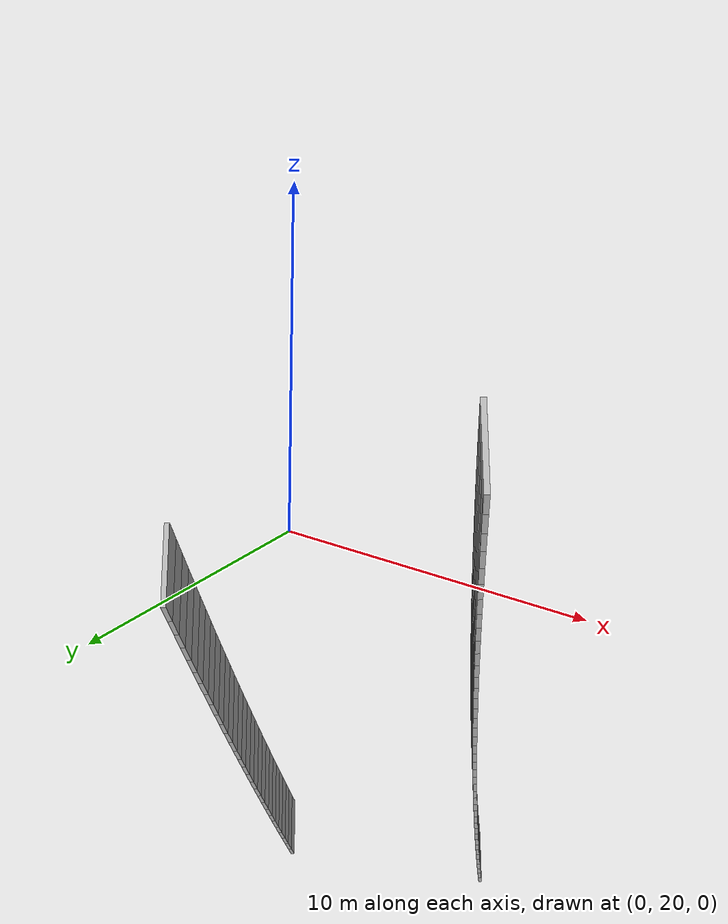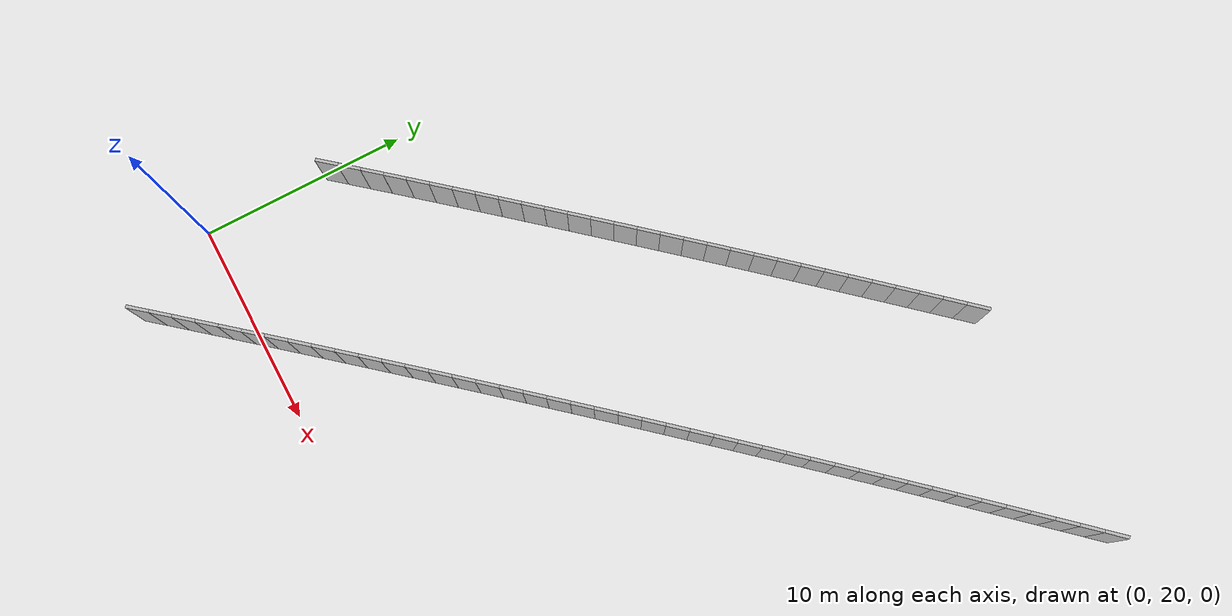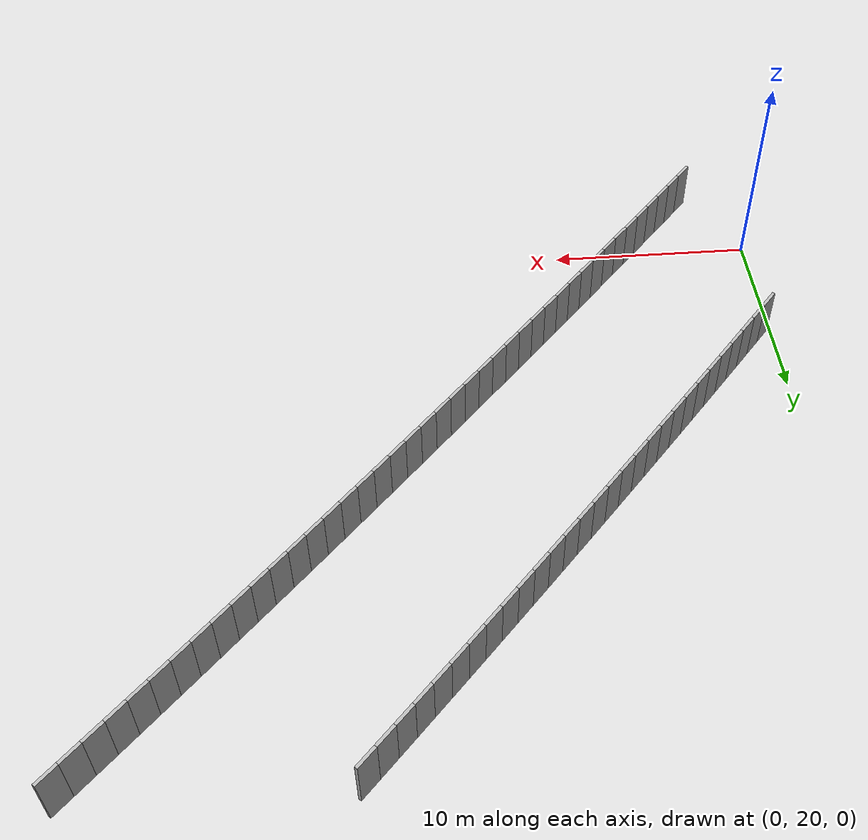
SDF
<?xml version="1.0" ?>
<sdf version="1.6">
  <model name="sps_0940">
    <pose frame="">0 0 0 0 -0 0</pose>
    <static>1</static>
    <self_collide>0</self_collide>
    <allow_auto_disable>0</allow_auto_disable>
    <link name="Wall3544">
      <kinematic>0</kinematic>
      <gravity>1</gravity>
      <self_collide>0</self_collide>
      <collision name="collision">
        <geometry>
          <box>
            <size>1.08576 0.15 2.5</size>
          </box>
        </geometry>
        <pose frame="">0 0 0 0 -0 0</pose>
      </collision>
      <visual name="visual">
        <geometry>
          <box>
            <size>1.08576 0.15 2.5</size>
          </box>
        </geometry>
        <pose frame="">0 0 0 0 -0 0</pose>
        <cast_shadows>1</cast_shadows>
        <transparency>0.0</transparency>
      </visual>
      <pose frame="">20.774 49.2208 1.25 0 0 -2.31568</pose>
    </link>
    <link name="Wall3545">
      <kinematic>0</kinematic>
      <gravity>1</gravity>
      <self_collide>0</self_collide>
      <collision name="collision">
        <geometry>
          <box>
            <size>1.08559 0.15 2.5</size>
          </box>
        </geometry>
        <pose frame="">0 0 0 0 -0 0</pose>
      </collision>
      <visual name="visual">
        <geometry>
          <box>
            <size>1.08559 0.15 2.5</size>
          </box>
        </geometry>
        <pose frame="">0 0 0 0 -0 0</pose>
        <cast_shadows>1</cast_shadows>
        <transparency>0.0</transparency>
      </visual>
      <pose frame="">20.0384 48.4223 1.25 0 0 -2.31476</pose>
    </link>
    <link name="Wall3546">
      <kinematic>0</kinematic>
      <gravity>1</gravity>
      <self_collide>0</self_collide>
      <collision name="collision">
        <geometry>
          <box>
            <size>1.08569 0.15 2.5</size>
          </box>
        </geometry>
        <pose frame="">0 0 0 0 -0 0</pose>
      </collision>
      <visual name="visual">
        <geometry>
          <box>
            <size>1.08569 0.15 2.5</size>
          </box>
        </geometry>
        <pose frame="">0 0 0 0 -0 0</pose>
        <cast_shadows>1</cast_shadows>
        <transparency>0.0</transparency>
      </visual>
      <pose frame="">19.3038 47.623 1.25 0 0 -2.31345</pose>
    </link>
    <link name="Wall3547">
      <kinematic>0</kinematic>
      <gravity>1</gravity>
      <self_collide>0</self_collide>
      <collision name="collision">
        <geometry>
          <box>
            <size>1.08587 0.15 2.5</size>
          </box>
        </geometry>
        <pose frame="">0 0 0 0 -0 0</pose>
      </collision>
      <visual name="visual">
        <geometry>
          <box>
            <size>1.08587 0.15 2.5</size>
          </box>
        </geometry>
        <pose frame="">0 0 0 0 -0 0</pose>
        <cast_shadows>1</cast_shadows>
        <transparency>0.0</transparency>
      </visual>
      <pose frame="">18.57 46.8227 1.25 0 0 -2.3123</pose>
    </link>
    <link name="Wall3548">
      <kinematic>0</kinematic>
      <gravity>1</gravity>
      <self_collide>0</self_collide>
      <collision name="collision">
        <geometry>
          <box>
            <size>1.08571 0.15 2.5</size>
          </box>
        </geometry>
        <pose frame="">0 0 0 0 -0 0</pose>
      </collision>
      <visual name="visual">
        <geometry>
          <box>
            <size>1.08571 0.15 2.5</size>
          </box>
        </geometry>
        <pose frame="">0 0 0 0 -0 0</pose>
        <cast_shadows>1</cast_shadows>
        <transparency>0.0</transparency>
      </visual>
      <pose frame="">17.8371 46.0216 1.25 0 0 -2.31122</pose>
    </link>
    <link name="Wall3549">
      <kinematic>0</kinematic>
      <gravity>1</gravity>
      <self_collide>0</self_collide>
      <collision name="collision">
        <geometry>
          <box>
            <size>1.08581 0.15 2.5</size>
          </box>
        </geometry>
        <pose frame="">0 0 0 0 -0 0</pose>
      </collision>
      <visual name="visual">
        <geometry>
          <box>
            <size>1.08581 0.15 2.5</size>
          </box>
        </geometry>
        <pose frame="">0 0 0 0 -0 0</pose>
        <cast_shadows>1</cast_shadows>
        <transparency>0.0</transparency>
      </visual>
      <pose frame="">17.1051 45.2197 1.25 0 0 -2.31007</pose>
    </link>
    <link name="Wall3550">
      <kinematic>0</kinematic>
      <gravity>1</gravity>
      <self_collide>0</self_collide>
      <collision name="collision">
        <geometry>
          <box>
            <size>1.08583 0.15 2.5</size>
          </box>
        </geometry>
        <pose frame="">0 0 0 0 -0 0</pose>
      </collision>
      <visual name="visual">
        <geometry>
          <box>
            <size>1.08583 0.15 2.5</size>
          </box>
        </geometry>
        <pose frame="">0 0 0 0 -0 0</pose>
        <cast_shadows>1</cast_shadows>
        <transparency>0.0</transparency>
      </visual>
      <pose frame="">16.374 44.4169 1.25 0 0 -2.30892</pose>
    </link>
    <link name="Wall3551">
      <kinematic>0</kinematic>
      <gravity>1</gravity>
      <self_collide>0</self_collide>
      <collision name="collision">
        <geometry>
          <box>
            <size>1.08563 0.15 2.5</size>
          </box>
        </geometry>
        <pose frame="">0 0 0 0 -0 0</pose>
      </collision>
      <visual name="visual">
        <geometry>
          <box>
            <size>1.08563 0.15 2.5</size>
          </box>
        </geometry>
        <pose frame="">0 0 0 0 -0 0</pose>
        <cast_shadows>1</cast_shadows>
        <transparency>0.0</transparency>
      </visual>
      <pose frame="">15.6439 43.6133 1.25 0 0 -2.30772</pose>
    </link>
    <link name="Wall3552">
      <kinematic>0</kinematic>
      <gravity>1</gravity>
      <self_collide>0</self_collide>
      <collision name="collision">
        <geometry>
          <box>
            <size>1.08565 0.15 2.5</size>
          </box>
        </geometry>
        <pose frame="">0 0 0 0 -0 0</pose>
      </collision>
      <visual name="visual">
        <geometry>
          <box>
            <size>1.08565 0.15 2.5</size>
          </box>
        </geometry>
        <pose frame="">0 0 0 0 -0 0</pose>
        <cast_shadows>1</cast_shadows>
        <transparency>0.0</transparency>
      </visual>
      <pose frame="">14.9148 42.8089 1.25 0 0 -2.30656</pose>
    </link>
    <link name="Wall3553">
      <kinematic>0</kinematic>
      <gravity>1</gravity>
      <self_collide>0</self_collide>
      <collision name="collision">
        <geometry>
          <box>
            <size>1.08566 0.15 2.5</size>
          </box>
        </geometry>
        <pose frame="">0 0 0 0 -0 0</pose>
      </collision>
      <visual name="visual">
        <geometry>
          <box>
            <size>1.08566 0.15 2.5</size>
          </box>
        </geometry>
        <pose frame="">0 0 0 0 -0 0</pose>
        <cast_shadows>1</cast_shadows>
        <transparency>0.0</transparency>
      </visual>
      <pose frame="">14.1865 42.0037 1.25 0 0 -2.30549</pose>
    </link>
    <link name="Wall3554">
      <kinematic>0</kinematic>
      <gravity>1</gravity>
      <self_collide>0</self_collide>
      <collision name="collision">
        <geometry>
          <box>
            <size>1.08604 0.15 2.5</size>
          </box>
        </geometry>
        <pose frame="">0 0 0 0 -0 0</pose>
      </collision>
      <visual name="visual">
        <geometry>
          <box>
            <size>1.08604 0.15 2.5</size>
          </box>
        </geometry>
        <pose frame="">0 0 0 0 -0 0</pose>
        <cast_shadows>1</cast_shadows>
        <transparency>0.0</transparency>
      </visual>
      <pose frame="">13.4592 41.1975 1.25 0 0 -2.30419</pose>
    </link>
    <link name="Wall3555">
      <kinematic>0</kinematic>
      <gravity>1</gravity>
      <self_collide>0</self_collide>
      <collision name="collision">
        <geometry>
          <box>
            <size>1.08579 0.15 2.5</size>
          </box>
        </geometry>
        <pose frame="">0 0 0 0 -0 0</pose>
      </collision>
      <visual name="visual">
        <geometry>
          <box>
            <size>1.08579 0.15 2.5</size>
          </box>
        </geometry>
        <pose frame="">0 0 0 0 -0 0</pose>
        <cast_shadows>1</cast_shadows>
        <transparency>0.0</transparency>
      </visual>
      <pose frame="">12.7327 40.3904 1.25 0 0 -2.30319</pose>
    </link>
    <link name="Wall3556">
      <kinematic>0</kinematic>
      <gravity>1</gravity>
      <self_collide>0</self_collide>
      <collision name="collision">
        <geometry>
          <box>
            <size>1.08574 0.15 2.5</size>
          </box>
        </geometry>
        <pose frame="">0 0 0 0 -0 0</pose>
      </collision>
      <visual name="visual">
        <geometry>
          <box>
            <size>1.08574 0.15 2.5</size>
          </box>
        </geometry>
        <pose frame="">0 0 0 0 -0 0</pose>
        <cast_shadows>1</cast_shadows>
        <transparency>0.0</transparency>
      </visual>
      <pose frame="">12.0072 39.5826 1.25 0 0 -2.30195</pose>
    </link>
    <link name="Wall3557">
      <kinematic>0</kinematic>
      <gravity>1</gravity>
      <self_collide>0</self_collide>
      <collision name="collision">
        <geometry>
          <box>
            <size>1.08579 0.15 2.5</size>
          </box>
        </geometry>
        <pose frame="">0 0 0 0 -0 0</pose>
      </collision>
      <visual name="visual">
        <geometry>
          <box>
            <size>1.08579 0.15 2.5</size>
          </box>
        </geometry>
        <pose frame="">0 0 0 0 -0 0</pose>
        <cast_shadows>1</cast_shadows>
        <transparency>0.0</transparency>
      </visual>
      <pose frame="">11.2826 38.774 1.25 0 0 -2.301</pose>
    </link>
    <link name="Wall3558">
      <kinematic>0</kinematic>
      <gravity>1</gravity>
      <self_collide>0</self_collide>
      <collision name="collision">
        <geometry>
          <box>
            <size>1.0856 0.15 2.5</size>
          </box>
        </geometry>
        <pose frame="">0 0 0 0 -0 0</pose>
      </collision>
      <visual name="visual">
        <geometry>
          <box>
            <size>1.0856 0.15 2.5</size>
          </box>
        </geometry>
        <pose frame="">0 0 0 0 -0 0</pose>
        <cast_shadows>1</cast_shadows>
        <transparency>0.0</transparency>
      </visual>
      <pose frame="">10.5588 37.9647 1.25 0 0 -2.29987</pose>
    </link>
    <link name="Wall3559">
      <kinematic>0</kinematic>
      <gravity>1</gravity>
      <self_collide>0</self_collide>
      <collision name="collision">
        <geometry>
          <box>
            <size>1.08576 0.15 2.5</size>
          </box>
        </geometry>
        <pose frame="">0 0 0 0 -0 0</pose>
      </collision>
      <visual name="visual">
        <geometry>
          <box>
            <size>1.08576 0.15 2.5</size>
          </box>
        </geometry>
        <pose frame="">0 0 0 0 -0 0</pose>
        <cast_shadows>1</cast_shadows>
        <transparency>0.0</transparency>
      </visual>
      <pose frame="">9.83605 37.1546 1.25 0 0 -2.29869</pose>
    </link>
    <link name="Wall3560">
      <kinematic>0</kinematic>
      <gravity>1</gravity>
      <self_collide>0</self_collide>
      <collision name="collision">
        <geometry>
          <box>
            <size>1.08574 0.15 2.5</size>
          </box>
        </geometry>
        <pose frame="">0 0 0 0 -0 0</pose>
      </collision>
      <visual name="visual">
        <geometry>
          <box>
            <size>1.08574 0.15 2.5</size>
          </box>
        </geometry>
        <pose frame="">0 0 0 0 -0 0</pose>
        <cast_shadows>1</cast_shadows>
        <transparency>0.0</transparency>
      </visual>
      <pose frame="">9.11416 36.3436 1.25 0 0 -2.29757</pose>
    </link>
    <link name="Wall3561">
      <kinematic>0</kinematic>
      <gravity>1</gravity>
      <self_collide>0</self_collide>
      <collision name="collision">
        <geometry>
          <box>
            <size>1.08565 0.15 2.5</size>
          </box>
        </geometry>
        <pose frame="">0 0 0 0 -0 0</pose>
      </collision>
      <visual name="visual">
        <geometry>
          <box>
            <size>1.08565 0.15 2.5</size>
          </box>
        </geometry>
        <pose frame="">0 0 0 0 -0 0</pose>
        <cast_shadows>1</cast_shadows>
        <transparency>0.0</transparency>
      </visual>
      <pose frame="">8.39324 35.5318 1.25 0 0 -2.29637</pose>
    </link>
    <link name="Wall3562">
      <kinematic>0</kinematic>
      <gravity>1</gravity>
      <self_collide>0</self_collide>
      <collision name="collision">
        <geometry>
          <box>
            <size>1.08572 0.15 2.5</size>
          </box>
        </geometry>
        <pose frame="">0 0 0 0 -0 0</pose>
      </collision>
      <visual name="visual">
        <geometry>
          <box>
            <size>1.08572 0.15 2.5</size>
          </box>
        </geometry>
        <pose frame="">0 0 0 0 -0 0</pose>
        <cast_shadows>1</cast_shadows>
        <transparency>0.0</transparency>
      </visual>
      <pose frame="">7.67324 34.7192 1.25 0 0 -2.29534</pose>
    </link>
    <link name="Wall3563">
      <kinematic>0</kinematic>
      <gravity>1</gravity>
      <self_collide>0</self_collide>
      <collision name="collision">
        <geometry>
          <box>
            <size>1.08569 0.15 2.5</size>
          </box>
        </geometry>
        <pose frame="">0 0 0 0 -0 0</pose>
      </collision>
      <visual name="visual">
        <geometry>
          <box>
            <size>1.08569 0.15 2.5</size>
          </box>
        </geometry>
        <pose frame="">0 0 0 0 -0 0</pose>
        <cast_shadows>1</cast_shadows>
        <transparency>0.0</transparency>
      </visual>
      <pose frame="">6.95425 33.9057 1.25 0 0 -2.29386</pose>
    </link>
    <link name="Wall3564">
      <kinematic>0</kinematic>
      <gravity>1</gravity>
      <self_collide>0</self_collide>
      <collision name="collision">
        <geometry>
          <box>
            <size>1.08569 0.15 2.5</size>
          </box>
        </geometry>
        <pose frame="">0 0 0 0 -0 0</pose>
      </collision>
      <visual name="visual">
        <geometry>
          <box>
            <size>1.08569 0.15 2.5</size>
          </box>
        </geometry>
        <pose frame="">0 0 0 0 -0 0</pose>
        <cast_shadows>1</cast_shadows>
        <transparency>0.0</transparency>
      </visual>
      <pose frame="">6.23617 33.0914 1.25 0 0 -2.29311</pose>
    </link>
    <link name="Wall3565">
      <kinematic>0</kinematic>
      <gravity>1</gravity>
      <self_collide>0</self_collide>
      <collision name="collision">
        <geometry>
          <box>
            <size>1.08583 0.15 2.5</size>
          </box>
        </geometry>
        <pose frame="">0 0 0 0 -0 0</pose>
      </collision>
      <visual name="visual">
        <geometry>
          <box>
            <size>1.08583 0.15 2.5</size>
          </box>
        </geometry>
        <pose frame="">0 0 0 0 -0 0</pose>
        <cast_shadows>1</cast_shadows>
        <transparency>0.0</transparency>
      </visual>
      <pose frame="">5.51888 32.2763 1.25 0 0 -2.2918</pose>
    </link>
    <link name="Wall3566">
      <kinematic>0</kinematic>
      <gravity>1</gravity>
      <self_collide>0</self_collide>
      <collision name="collision">
        <geometry>
          <box>
            <size>1.08578 0.15 2.5</size>
          </box>
        </geometry>
        <pose frame="">0 0 0 0 -0 0</pose>
      </collision>
      <visual name="visual">
        <geometry>
          <box>
            <size>1.08578 0.15 2.5</size>
          </box>
        </geometry>
        <pose frame="">0 0 0 0 -0 0</pose>
        <cast_shadows>1</cast_shadows>
        <transparency>0.0</transparency>
      </visual>
      <pose frame="">4.80257 31.4603 1.25 0 0 -2.29064</pose>
    </link>
    <link name="Wall3567">
      <kinematic>0</kinematic>
      <gravity>1</gravity>
      <self_collide>0</self_collide>
      <collision name="collision">
        <geometry>
          <box>
            <size>1.08569 0.15 2.5</size>
          </box>
        </geometry>
        <pose frame="">0 0 0 0 -0 0</pose>
      </collision>
      <visual name="visual">
        <geometry>
          <box>
            <size>1.08569 0.15 2.5</size>
          </box>
        </geometry>
        <pose frame="">0 0 0 0 -0 0</pose>
        <cast_shadows>1</cast_shadows>
        <transparency>0.0</transparency>
      </visual>
      <pose frame="">4.08727 30.6435 1.25 0 0 -2.28944</pose>
    </link>
    <link name="Wall3568">
      <kinematic>0</kinematic>
      <gravity>1</gravity>
      <self_collide>0</self_collide>
      <collision name="collision">
        <geometry>
          <box>
            <size>1.08581 0.15 2.5</size>
          </box>
        </geometry>
        <pose frame="">0 0 0 0 -0 0</pose>
      </collision>
      <visual name="visual">
        <geometry>
          <box>
            <size>1.08581 0.15 2.5</size>
          </box>
        </geometry>
        <pose frame="">0 0 0 0 -0 0</pose>
        <cast_shadows>1</cast_shadows>
        <transparency>0.0</transparency>
      </visual>
      <pose frame="">3.37286 29.8259 1.25 0 0 -2.28845</pose>
    </link>
    <link name="Wall3569">
      <kinematic>0</kinematic>
      <gravity>1</gravity>
      <self_collide>0</self_collide>
      <collision name="collision">
        <geometry>
          <box>
            <size>1.08568 0.15 2.5</size>
          </box>
        </geometry>
        <pose frame="">0 0 0 0 -0 0</pose>
      </collision>
      <visual name="visual">
        <geometry>
          <box>
            <size>1.08568 0.15 2.5</size>
          </box>
        </geometry>
        <pose frame="">0 0 0 0 -0 0</pose>
        <cast_shadows>1</cast_shadows>
        <transparency>0.0</transparency>
      </visual>
      <pose frame="">2.65935 29.0075 1.25 0 0 -2.28721</pose>
    </link>
    <link name="Wall3570">
      <kinematic>0</kinematic>
      <gravity>1</gravity>
      <self_collide>0</self_collide>
      <collision name="collision">
        <geometry>
          <box>
            <size>1.08568 0.15 2.5</size>
          </box>
        </geometry>
        <pose frame="">0 0 0 0 -0 0</pose>
      </collision>
      <visual name="visual">
        <geometry>
          <box>
            <size>1.08568 0.15 2.5</size>
          </box>
        </geometry>
        <pose frame="">0 0 0 0 -0 0</pose>
        <cast_shadows>1</cast_shadows>
        <transparency>0.0</transparency>
      </visual>
      <pose frame="">1.94686 28.1883 1.25 0 0 -2.28609</pose>
    </link>
    <link name="Wall3571">
      <kinematic>0</kinematic>
      <gravity>1</gravity>
      <self_collide>0</self_collide>
      <collision name="collision">
        <geometry>
          <box>
            <size>1.08563 0.15 2.5</size>
          </box>
        </geometry>
        <pose frame="">0 0 0 0 -0 0</pose>
      </collision>
      <visual name="visual">
        <geometry>
          <box>
            <size>1.08563 0.15 2.5</size>
          </box>
        </geometry>
        <pose frame="">0 0 0 0 -0 0</pose>
        <cast_shadows>1</cast_shadows>
        <transparency>0.0</transparency>
      </visual>
      <pose frame="">1.23525 27.3684 1.25 0 0 -2.28509</pose>
    </link>
    <link name="Wall3572">
      <kinematic>0</kinematic>
      <gravity>1</gravity>
      <self_collide>0</self_collide>
      <collision name="collision">
        <geometry>
          <box>
            <size>1.08568 0.15 2.5</size>
          </box>
        </geometry>
        <pose frame="">0 0 0 0 -0 0</pose>
      </collision>
      <visual name="visual">
        <geometry>
          <box>
            <size>1.08568 0.15 2.5</size>
          </box>
        </geometry>
        <pose frame="">0 0 0 0 -0 0</pose>
        <cast_shadows>1</cast_shadows>
        <transparency>0.0</transparency>
      </visual>
      <pose frame="">0.524558 26.5477 1.25 0 0 -2.28386</pose>
    </link>
    <link name="Wall10059">
      <kinematic>0</kinematic>
      <gravity>1</gravity>
      <self_collide>0</self_collide>
      <collision name="collision">
        <geometry>
          <box>
            <size>1.0762 0.15 2.5</size>
          </box>
        </geometry>
        <pose frame="">0 0 0 0 -0 0</pose>
      </collision>
      <visual name="visual">
        <geometry>
          <box>
            <size>1.0762 0.15 2.5</size>
          </box>
        </geometry>
        <pose frame="">0 0 0 0 -0 0</pose>
        <cast_shadows>1</cast_shadows>
        <transparency>0.0</transparency>
      </visual>
      <pose frame="">32.1515 48.9757 1.25 0 0 -2.32383</pose>
    </link>
    <link name="Wall10060">
      <kinematic>0</kinematic>
      <gravity>1</gravity>
      <self_collide>0</self_collide>
      <collision name="collision">
        <geometry>
          <box>
            <size>1.07625 0.15 2.5</size>
          </box>
        </geometry>
        <pose frame="">0 0 0 0 -0 0</pose>
      </collision>
      <visual name="visual">
        <geometry>
          <box>
            <size>1.07625 0.15 2.5</size>
          </box>
        </geometry>
        <pose frame="">0 0 0 0 -0 0</pose>
        <cast_shadows>1</cast_shadows>
        <transparency>0.0</transparency>
      </visual>
      <pose frame="">31.416 48.19 1.25 0 0 -2.32254</pose>
    </link>
    <link name="Wall10061">
      <kinematic>0</kinematic>
      <gravity>1</gravity>
      <self_collide>0</self_collide>
      <collision name="collision">
        <geometry>
          <box>
            <size>1.07646 0.15 2.5</size>
          </box>
        </geometry>
        <pose frame="">0 0 0 0 -0 0</pose>
      </collision>
      <visual name="visual">
        <geometry>
          <box>
            <size>1.07646 0.15 2.5</size>
          </box>
        </geometry>
        <pose frame="">0 0 0 0 -0 0</pose>
        <cast_shadows>1</cast_shadows>
        <transparency>0.0</transparency>
      </visual>
      <pose frame="">30.6814 47.4033 1.25 0 0 -2.32143</pose>
    </link>
    <link name="Wall10062">
      <kinematic>0</kinematic>
      <gravity>1</gravity>
      <self_collide>0</self_collide>
      <collision name="collision">
        <geometry>
          <box>
            <size>1.07602 0.15 2.5</size>
          </box>
        </geometry>
        <pose frame="">0 0 0 0 -0 0</pose>
      </collision>
      <visual name="visual">
        <geometry>
          <box>
            <size>1.07602 0.15 2.5</size>
          </box>
        </geometry>
        <pose frame="">0 0 0 0 -0 0</pose>
        <cast_shadows>1</cast_shadows>
        <transparency>0.0</transparency>
      </visual>
      <pose frame="">29.9477 46.6159 1.25 0 0 -2.32041</pose>
    </link>
    <link name="Wall10063">
      <kinematic>0</kinematic>
      <gravity>1</gravity>
      <self_collide>0</self_collide>
      <collision name="collision">
        <geometry>
          <box>
            <size>1.07603 0.15 2.5</size>
          </box>
        </geometry>
        <pose frame="">0 0 0 0 -0 0</pose>
      </collision>
      <visual name="visual">
        <geometry>
          <box>
            <size>1.07603 0.15 2.5</size>
          </box>
        </geometry>
        <pose frame="">0 0 0 0 -0 0</pose>
        <cast_shadows>1</cast_shadows>
        <transparency>0.0</transparency>
      </visual>
      <pose frame="">29.215 45.8279 1.25 0 0 -2.31925</pose>
    </link>
    <link name="Wall10064">
      <kinematic>0</kinematic>
      <gravity>1</gravity>
      <self_collide>0</self_collide>
      <collision name="collision">
        <geometry>
          <box>
            <size>1.07599 0.15 2.5</size>
          </box>
        </geometry>
        <pose frame="">0 0 0 0 -0 0</pose>
      </collision>
      <visual name="visual">
        <geometry>
          <box>
            <size>1.07599 0.15 2.5</size>
          </box>
        </geometry>
        <pose frame="">0 0 0 0 -0 0</pose>
        <cast_shadows>1</cast_shadows>
        <transparency>0.0</transparency>
      </visual>
      <pose frame="">28.4832 45.039 1.25 0 0 -2.31796</pose>
    </link>
    <link name="Wall10065">
      <kinematic>0</kinematic>
      <gravity>1</gravity>
      <self_collide>0</self_collide>
      <collision name="collision">
        <geometry>
          <box>
            <size>1.07608 0.15 2.5</size>
          </box>
        </geometry>
        <pose frame="">0 0 0 0 -0 0</pose>
      </collision>
      <visual name="visual">
        <geometry>
          <box>
            <size>1.07608 0.15 2.5</size>
          </box>
        </geometry>
        <pose frame="">0 0 0 0 -0 0</pose>
        <cast_shadows>1</cast_shadows>
        <transparency>0.0</transparency>
      </visual>
      <pose frame="">27.7524 44.2492 1.25 0 0 -2.31688</pose>
    </link>
    <link name="Wall10066">
      <kinematic>0</kinematic>
      <gravity>1</gravity>
      <self_collide>0</self_collide>
      <collision name="collision">
        <geometry>
          <box>
            <size>1.07622 0.15 2.5</size>
          </box>
        </geometry>
        <pose frame="">0 0 0 0 -0 0</pose>
      </collision>
      <visual name="visual">
        <geometry>
          <box>
            <size>1.07622 0.15 2.5</size>
          </box>
        </geometry>
        <pose frame="">0 0 0 0 -0 0</pose>
        <cast_shadows>1</cast_shadows>
        <transparency>0.0</transparency>
      </visual>
      <pose frame="">27.0225 43.4585 1.25 0 0 -2.31568</pose>
    </link>
    <link name="Wall10067">
      <kinematic>0</kinematic>
      <gravity>1</gravity>
      <self_collide>0</self_collide>
      <collision name="collision">
        <geometry>
          <box>
            <size>1.07618 0.15 2.5</size>
          </box>
        </geometry>
        <pose frame="">0 0 0 0 -0 0</pose>
      </collision>
      <visual name="visual">
        <geometry>
          <box>
            <size>1.07618 0.15 2.5</size>
          </box>
        </geometry>
        <pose frame="">0 0 0 0 -0 0</pose>
        <cast_shadows>1</cast_shadows>
        <transparency>0.0</transparency>
      </visual>
      <pose frame="">26.2934 42.6669 1.25 0 0 -2.31456</pose>
    </link>
    <link name="Wall10068">
      <kinematic>0</kinematic>
      <gravity>1</gravity>
      <self_collide>0</self_collide>
      <collision name="collision">
        <geometry>
          <box>
            <size>1.07593 0.15 2.5</size>
          </box>
        </geometry>
        <pose frame="">0 0 0 0 -0 0</pose>
      </collision>
      <visual name="visual">
        <geometry>
          <box>
            <size>1.07593 0.15 2.5</size>
          </box>
        </geometry>
        <pose frame="">0 0 0 0 -0 0</pose>
        <cast_shadows>1</cast_shadows>
        <transparency>0.0</transparency>
      </visual>
      <pose frame="">25.5652 41.8746 1.25 0 0 -2.31346</pose>
    </link>
    <link name="Wall10069">
      <kinematic>0</kinematic>
      <gravity>1</gravity>
      <self_collide>0</self_collide>
      <collision name="collision">
        <geometry>
          <box>
            <size>1.07611 0.15 2.5</size>
          </box>
        </geometry>
        <pose frame="">0 0 0 0 -0 0</pose>
      </collision>
      <visual name="visual">
        <geometry>
          <box>
            <size>1.07611 0.15 2.5</size>
          </box>
        </geometry>
        <pose frame="">0 0 0 0 -0 0</pose>
        <cast_shadows>1</cast_shadows>
        <transparency>0.0</transparency>
      </visual>
      <pose frame="">24.838 41.0815 1.25 0 0 -2.3123</pose>
    </link>
    <link name="Wall10070">
      <kinematic>0</kinematic>
      <gravity>1</gravity>
      <self_collide>0</self_collide>
      <collision name="collision">
        <geometry>
          <box>
            <size>1.07604 0.15 2.5</size>
          </box>
        </geometry>
        <pose frame="">0 0 0 0 -0 0</pose>
      </collision>
      <visual name="visual">
        <geometry>
          <box>
            <size>1.07604 0.15 2.5</size>
          </box>
        </geometry>
        <pose frame="">0 0 0 0 -0 0</pose>
        <cast_shadows>1</cast_shadows>
        <transparency>0.0</transparency>
      </visual>
      <pose frame="">24.1117 40.2875 1.25 0 0 -2.31106</pose>
    </link>
    <link name="Wall10071">
      <kinematic>0</kinematic>
      <gravity>1</gravity>
      <self_collide>0</self_collide>
      <collision name="collision">
        <geometry>
          <box>
            <size>1.07595 0.15 2.5</size>
          </box>
        </geometry>
        <pose frame="">0 0 0 0 -0 0</pose>
      </collision>
      <visual name="visual">
        <geometry>
          <box>
            <size>1.07595 0.15 2.5</size>
          </box>
        </geometry>
        <pose frame="">0 0 0 0 -0 0</pose>
        <cast_shadows>1</cast_shadows>
        <transparency>0.0</transparency>
      </visual>
      <pose frame="">23.3863 39.4928 1.25 0 0 -2.31021</pose>
    </link>
    <link name="Wall10072">
      <kinematic>0</kinematic>
      <gravity>1</gravity>
      <self_collide>0</self_collide>
      <collision name="collision">
        <geometry>
          <box>
            <size>1.07602 0.15 2.5</size>
          </box>
        </geometry>
        <pose frame="">0 0 0 0 -0 0</pose>
      </collision>
      <visual name="visual">
        <geometry>
          <box>
            <size>1.07602 0.15 2.5</size>
          </box>
        </geometry>
        <pose frame="">0 0 0 0 -0 0</pose>
        <cast_shadows>1</cast_shadows>
        <transparency>0.0</transparency>
      </visual>
      <pose frame="">22.6618 38.6973 1.25 0 0 -2.30885</pose>
    </link>
    <link name="Wall10073">
      <kinematic>0</kinematic>
      <gravity>1</gravity>
      <self_collide>0</self_collide>
      <collision name="collision">
        <geometry>
          <box>
            <size>1.07599 0.15 2.5</size>
          </box>
        </geometry>
        <pose frame="">0 0 0 0 -0 0</pose>
      </collision>
      <visual name="visual">
        <geometry>
          <box>
            <size>1.07599 0.15 2.5</size>
          </box>
        </geometry>
        <pose frame="">0 0 0 0 -0 0</pose>
        <cast_shadows>1</cast_shadows>
        <transparency>0.0</transparency>
      </visual>
      <pose frame="">21.9383 37.9009 1.25 0 0 -2.3078</pose>
    </link>
    <link name="Wall10074">
      <kinematic>0</kinematic>
      <gravity>1</gravity>
      <self_collide>0</self_collide>
      <collision name="collision">
        <geometry>
          <box>
            <size>1.07601 0.15 2.5</size>
          </box>
        </geometry>
        <pose frame="">0 0 0 0 -0 0</pose>
      </collision>
      <visual name="visual">
        <geometry>
          <box>
            <size>1.07601 0.15 2.5</size>
          </box>
        </geometry>
        <pose frame="">0 0 0 0 -0 0</pose>
        <cast_shadows>1</cast_shadows>
        <transparency>0.0</transparency>
      </visual>
      <pose frame="">21.2156 37.1037 1.25 0 0 -2.30664</pose>
    </link>
    <link name="Wall10075">
      <kinematic>0</kinematic>
      <gravity>1</gravity>
      <self_collide>0</self_collide>
      <collision name="collision">
        <geometry>
          <box>
            <size>1.07602 0.15 2.5</size>
          </box>
        </geometry>
        <pose frame="">0 0 0 0 -0 0</pose>
      </collision>
      <visual name="visual">
        <geometry>
          <box>
            <size>1.07602 0.15 2.5</size>
          </box>
        </geometry>
        <pose frame="">0 0 0 0 -0 0</pose>
        <cast_shadows>1</cast_shadows>
        <transparency>0.0</transparency>
      </visual>
      <pose frame="">20.4938 36.3057 1.25 0 0 -2.30556</pose>
    </link>
    <link name="Wall10076">
      <kinematic>0</kinematic>
      <gravity>1</gravity>
      <self_collide>0</self_collide>
      <collision name="collision">
        <geometry>
          <box>
            <size>1.07614 0.15 2.5</size>
          </box>
        </geometry>
        <pose frame="">0 0 0 0 -0 0</pose>
      </collision>
      <visual name="visual">
        <geometry>
          <box>
            <size>1.07614 0.15 2.5</size>
          </box>
        </geometry>
        <pose frame="">0 0 0 0 -0 0</pose>
        <cast_shadows>1</cast_shadows>
        <transparency>0.0</transparency>
      </visual>
      <pose frame="">19.7729 35.5068 1.25 0 0 -2.30424</pose>
    </link>
    <link name="Wall10077">
      <kinematic>0</kinematic>
      <gravity>1</gravity>
      <self_collide>0</self_collide>
      <collision name="collision">
        <geometry>
          <box>
            <size>1.07589 0.15 2.5</size>
          </box>
        </geometry>
        <pose frame="">0 0 0 0 -0 0</pose>
      </collision>
      <visual name="visual">
        <geometry>
          <box>
            <size>1.07589 0.15 2.5</size>
          </box>
        </geometry>
        <pose frame="">0 0 0 0 -0 0</pose>
        <cast_shadows>1</cast_shadows>
        <transparency>0.0</transparency>
      </visual>
      <pose frame="">19.053 34.7071 1.25 0 0 -2.30322</pose>
    </link>
    <link name="Wall10078">
      <kinematic>0</kinematic>
      <gravity>1</gravity>
      <self_collide>0</self_collide>
      <collision name="collision">
        <geometry>
          <box>
            <size>1.07609 0.15 2.5</size>
          </box>
        </geometry>
        <pose frame="">0 0 0 0 -0 0</pose>
      </collision>
      <visual name="visual">
        <geometry>
          <box>
            <size>1.07609 0.15 2.5</size>
          </box>
        </geometry>
        <pose frame="">0 0 0 0 -0 0</pose>
        <cast_shadows>1</cast_shadows>
        <transparency>0.0</transparency>
      </visual>
      <pose frame="">18.3339 33.9066 1.25 0 0 -2.30206</pose>
    </link>
    <link name="Wall10079">
      <kinematic>0</kinematic>
      <gravity>1</gravity>
      <self_collide>0</self_collide>
      <collision name="collision">
        <geometry>
          <box>
            <size>1.07616 0.15 2.5</size>
          </box>
        </geometry>
        <pose frame="">0 0 0 0 -0 0</pose>
      </collision>
      <visual name="visual">
        <geometry>
          <box>
            <size>1.07616 0.15 2.5</size>
          </box>
        </geometry>
        <pose frame="">0 0 0 0 -0 0</pose>
        <cast_shadows>1</cast_shadows>
        <transparency>0.0</transparency>
      </visual>
      <pose frame="">17.6157 33.1052 1.25 0 0 -2.30094</pose>
    </link>
    <link name="Wall10080">
      <kinematic>0</kinematic>
      <gravity>1</gravity>
      <self_collide>0</self_collide>
      <collision name="collision">
        <geometry>
          <box>
            <size>1.0761 0.15 2.5</size>
          </box>
        </geometry>
        <pose frame="">0 0 0 0 -0 0</pose>
      </collision>
      <visual name="visual">
        <geometry>
          <box>
            <size>1.0761 0.15 2.5</size>
          </box>
        </geometry>
        <pose frame="">0 0 0 0 -0 0</pose>
        <cast_shadows>1</cast_shadows>
        <transparency>0.0</transparency>
      </visual>
      <pose frame="">16.8985 32.303 1.25 0 0 -2.29977</pose>
    </link>
    <link name="Wall10081">
      <kinematic>0</kinematic>
      <gravity>1</gravity>
      <self_collide>0</self_collide>
      <collision name="collision">
        <geometry>
          <box>
            <size>1.07604 0.15 2.5</size>
          </box>
        </geometry>
        <pose frame="">0 0 0 0 -0 0</pose>
      </collision>
      <visual name="visual">
        <geometry>
          <box>
            <size>1.07604 0.15 2.5</size>
          </box>
        </geometry>
        <pose frame="">0 0 0 0 -0 0</pose>
        <cast_shadows>1</cast_shadows>
        <transparency>0.0</transparency>
      </visual>
      <pose frame="">16.1822 31.5 1.25 0 0 -2.29861</pose>
    </link>
    <link name="Wall10082">
      <kinematic>0</kinematic>
      <gravity>1</gravity>
      <self_collide>0</self_collide>
      <collision name="collision">
        <geometry>
          <box>
            <size>1.07594 0.15 2.5</size>
          </box>
        </geometry>
        <pose frame="">0 0 0 0 -0 0</pose>
      </collision>
      <visual name="visual">
        <geometry>
          <box>
            <size>1.07594 0.15 2.5</size>
          </box>
        </geometry>
        <pose frame="">0 0 0 0 -0 0</pose>
        <cast_shadows>1</cast_shadows>
        <transparency>0.0</transparency>
      </visual>
      <pose frame="">15.4668 30.6962 1.25 0 0 -2.2974</pose>
    </link>
    <link name="Wall10083">
      <kinematic>0</kinematic>
      <gravity>1</gravity>
      <self_collide>0</self_collide>
      <collision name="collision">
        <geometry>
          <box>
            <size>1.07613 0.15 2.5</size>
          </box>
        </geometry>
        <pose frame="">0 0 0 0 -0 0</pose>
      </collision>
      <visual name="visual">
        <geometry>
          <box>
            <size>1.07613 0.15 2.5</size>
          </box>
        </geometry>
        <pose frame="">0 0 0 0 -0 0</pose>
        <cast_shadows>1</cast_shadows>
        <transparency>0.0</transparency>
      </visual>
      <pose frame="">14.7524 29.8916 1.25 0 0 -2.29648</pose>
    </link>
    <link name="Wall10084">
      <kinematic>0</kinematic>
      <gravity>1</gravity>
      <self_collide>0</self_collide>
      <collision name="collision">
        <geometry>
          <box>
            <size>1.07595 0.15 2.5</size>
          </box>
        </geometry>
        <pose frame="">0 0 0 0 -0 0</pose>
      </collision>
      <visual name="visual">
        <geometry>
          <box>
            <size>1.07595 0.15 2.5</size>
          </box>
        </geometry>
        <pose frame="">0 0 0 0 -0 0</pose>
        <cast_shadows>1</cast_shadows>
        <transparency>0.0</transparency>
      </visual>
      <pose frame="">14.0388 29.0862 1.25 0 0 -2.29519</pose>
    </link>
    <link name="Wall10085">
      <kinematic>0</kinematic>
      <gravity>1</gravity>
      <self_collide>0</self_collide>
      <collision name="collision">
        <geometry>
          <box>
            <size>1.07634 0.15 2.5</size>
          </box>
        </geometry>
        <pose frame="">0 0 0 0 -0 0</pose>
      </collision>
      <visual name="visual">
        <geometry>
          <box>
            <size>1.07634 0.15 2.5</size>
          </box>
        </geometry>
        <pose frame="">0 0 0 0 -0 0</pose>
        <cast_shadows>1</cast_shadows>
        <transparency>0.0</transparency>
      </visual>
      <pose frame="">13.3262 28.2798 1.25 0 0 -2.29388</pose>
    </link>
    <link name="Wall10086">
      <kinematic>0</kinematic>
      <gravity>1</gravity>
      <self_collide>0</self_collide>
      <collision name="collision">
        <geometry>
          <box>
            <size>1.07609 0.15 2.5</size>
          </box>
        </geometry>
        <pose frame="">0 0 0 0 -0 0</pose>
      </collision>
      <visual name="visual">
        <geometry>
          <box>
            <size>1.07609 0.15 2.5</size>
          </box>
        </geometry>
        <pose frame="">0 0 0 0 -0 0</pose>
        <cast_shadows>1</cast_shadows>
        <transparency>0.0</transparency>
      </visual>
      <pose frame="">12.6143 27.4726 1.25 0 0 -2.29311</pose>
    </link>
    <link name="Wall10087">
      <kinematic>0</kinematic>
      <gravity>1</gravity>
      <self_collide>0</self_collide>
      <collision name="collision">
        <geometry>
          <box>
            <size>1.07605 0.15 2.5</size>
          </box>
        </geometry>
        <pose frame="">0 0 0 0 -0 0</pose>
      </collision>
      <visual name="visual">
        <geometry>
          <box>
            <size>1.07605 0.15 2.5</size>
          </box>
        </geometry>
        <pose frame="">0 0 0 0 -0 0</pose>
        <cast_shadows>1</cast_shadows>
        <transparency>0.0</transparency>
      </visual>
      <pose frame="">11.9034 26.6648 1.25 0 0 -2.29186</pose>
    </link>
    <link name="Wall10088">
      <kinematic>0</kinematic>
      <gravity>1</gravity>
      <self_collide>0</self_collide>
      <collision name="collision">
        <geometry>
          <box>
            <size>1.076 0.15 2.5</size>
          </box>
        </geometry>
        <pose frame="">0 0 0 0 -0 0</pose>
      </collision>
      <visual name="visual">
        <geometry>
          <box>
            <size>1.076 0.15 2.5</size>
          </box>
        </geometry>
        <pose frame="">0 0 0 0 -0 0</pose>
        <cast_shadows>1</cast_shadows>
        <transparency>0.0</transparency>
      </visual>
      <pose frame="">11.1935 25.8562 1.25 0 0 -2.29069</pose>
    </link>
    <link name="Wall10089">
      <kinematic>0</kinematic>
      <gravity>1</gravity>
      <self_collide>0</self_collide>
      <collision name="collision">
        <geometry>
          <box>
            <size>1.07587 0.15 2.5</size>
          </box>
        </geometry>
        <pose frame="">0 0 0 0 -0 0</pose>
      </collision>
      <visual name="visual">
        <geometry>
          <box>
            <size>1.07587 0.15 2.5</size>
          </box>
        </geometry>
        <pose frame="">0 0 0 0 -0 0</pose>
        <cast_shadows>1</cast_shadows>
        <transparency>0.0</transparency>
      </visual>
      <pose frame="">10.4846 25.0468 1.25 0 0 -2.28951</pose>
    </link>
    <link name="Wall10090">
      <kinematic>0</kinematic>
      <gravity>1</gravity>
      <self_collide>0</self_collide>
      <collision name="collision">
        <geometry>
          <box>
            <size>1.07617 0.15 2.5</size>
          </box>
        </geometry>
        <pose frame="">0 0 0 0 -0 0</pose>
      </collision>
      <visual name="visual">
        <geometry>
          <box>
            <size>1.07617 0.15 2.5</size>
          </box>
        </geometry>
        <pose frame="">0 0 0 0 -0 0</pose>
        <cast_shadows>1</cast_shadows>
        <transparency>0.0</transparency>
      </visual>
      <pose frame="">9.77666 24.2365 1.25 0 0 -2.28829</pose>
    </link>
    <link name="Wall10091">
      <kinematic>0</kinematic>
      <gravity>1</gravity>
      <self_collide>0</self_collide>
      <collision name="collision">
        <geometry>
          <box>
            <size>1.07611 0.15 2.5</size>
          </box>
        </geometry>
        <pose frame="">0 0 0 0 -0 0</pose>
      </collision>
      <visual name="visual">
        <geometry>
          <box>
            <size>1.07611 0.15 2.5</size>
          </box>
        </geometry>
        <pose frame="">0 0 0 0 -0 0</pose>
        <cast_shadows>1</cast_shadows>
        <transparency>0.0</transparency>
      </visual>
      <pose frame="">9.06945 23.4254 1.25 0 0 -2.28744</pose>
    </link>
    <link name="Wall10092">
      <kinematic>0</kinematic>
      <gravity>1</gravity>
      <self_collide>0</self_collide>
      <collision name="collision">
        <geometry>
          <box>
            <size>1.07586 0.15 2.5</size>
          </box>
        </geometry>
        <pose frame="">0 0 0 0 -0 0</pose>
      </collision>
      <visual name="visual">
        <geometry>
          <box>
            <size>1.07586 0.15 2.5</size>
          </box>
        </geometry>
        <pose frame="">0 0 0 0 -0 0</pose>
        <cast_shadows>1</cast_shadows>
        <transparency>0.0</transparency>
      </visual>
      <pose frame="">8.36324 22.6136 1.25 0 0 -2.28606</pose>
    </link>
    <link name="Wall10093">
      <kinematic>0</kinematic>
      <gravity>1</gravity>
      <self_collide>0</self_collide>
      <collision name="collision">
        <geometry>
          <box>
            <size>1.07608 0.15 2.5</size>
          </box>
        </geometry>
        <pose frame="">0 0 0 0 -0 0</pose>
      </collision>
      <visual name="visual">
        <geometry>
          <box>
            <size>1.07608 0.15 2.5</size>
          </box>
        </geometry>
        <pose frame="">0 0 0 0 -0 0</pose>
        <cast_shadows>1</cast_shadows>
        <transparency>0.0</transparency>
      </visual>
      <pose frame="">7.65807 21.8009 1.25 0 0 -2.2849</pose>
    </link>
    <link name="Wall10094">
      <kinematic>0</kinematic>
      <gravity>1</gravity>
      <self_collide>0</self_collide>
      <collision name="collision">
        <geometry>
          <box>
            <size>1.07594 0.15 2.5</size>
          </box>
        </geometry>
        <pose frame="">0 0 0 0 -0 0</pose>
      </collision>
      <visual name="visual">
        <geometry>
          <box>
            <size>1.07594 0.15 2.5</size>
          </box>
        </geometry>
        <pose frame="">0 0 0 0 -0 0</pose>
        <cast_shadows>1</cast_shadows>
        <transparency>0.0</transparency>
      </visual>
      <pose frame="">6.95376 20.9874 1.25 0 0 -2.28389</pose>
    </link>
    <link name="Wall10095">
      <kinematic>0</kinematic>
      <gravity>1</gravity>
      <self_collide>0</self_collide>
      <collision name="collision">
        <geometry>
          <box>
            <size>1.07629 0.15 2.5</size>
          </box>
        </geometry>
        <pose frame="">0 0 0 0 -0 0</pose>
      </collision>
      <visual name="visual">
        <geometry>
          <box>
            <size>1.07629 0.15 2.5</size>
          </box>
        </geometry>
        <pose frame="">0 0 0 0 -0 0</pose>
        <cast_shadows>1</cast_shadows>
        <transparency>0.0</transparency>
      </visual>
      <pose frame="">6.25024 20.1731 1.25 0 0 -2.28279</pose>
    </link>
    <link name="Wall10096">
      <kinematic>0</kinematic>
      <gravity>1</gravity>
      <self_collide>0</self_collide>
      <collision name="collision">
        <geometry>
          <box>
            <size>1.07596 0.15 2.5</size>
          </box>
        </geometry>
        <pose frame="">0 0 0 0 -0 0</pose>
      </collision>
      <visual name="visual">
        <geometry>
          <box>
            <size>1.07596 0.15 2.5</size>
          </box>
        </geometry>
        <pose frame="">0 0 0 0 -0 0</pose>
        <cast_shadows>1</cast_shadows>
        <transparency>0.0</transparency>
      </visual>
      <pose frame="">5.54766 19.358 1.25 0 0 -2.28156</pose>
    </link>
    <link name="Wall10097">
      <kinematic>0</kinematic>
      <gravity>1</gravity>
      <self_collide>0</self_collide>
      <collision name="collision">
        <geometry>
          <box>
            <size>1.07603 0.15 2.5</size>
          </box>
        </geometry>
        <pose frame="">0 0 0 0 -0 0</pose>
      </collision>
      <visual name="visual">
        <geometry>
          <box>
            <size>1.07603 0.15 2.5</size>
          </box>
        </geometry>
        <pose frame="">0 0 0 0 -0 0</pose>
        <cast_shadows>1</cast_shadows>
        <transparency>0.0</transparency>
      </visual>
      <pose frame="">4.84606 18.5422 1.25 0 0 -2.2806</pose>
    </link>
    <link name="Wall10098">
      <kinematic>0</kinematic>
      <gravity>1</gravity>
      <self_collide>0</self_collide>
      <collision name="collision">
        <geometry>
          <box>
            <size>1.07528 0.15 2.5</size>
          </box>
        </geometry>
        <pose frame="">0 0 0 0 -0 0</pose>
      </collision>
      <visual name="visual">
        <geometry>
          <box>
            <size>1.07528 0.15 2.5</size>
          </box>
        </geometry>
        <pose frame="">0 0 0 0 -0 0</pose>
        <cast_shadows>1</cast_shadows>
        <transparency>0.0</transparency>
      </visual>
      <pose frame="">4.14565 17.7258 1.25 0 0 -2.27918</pose>
    </link>
    <link name="Wall10099">
      <kinematic>0</kinematic>
      <gravity>1</gravity>
      <self_collide>0</self_collide>
      <collision name="collision">
        <geometry>
          <box>
            <size>1.07511 0.15 2.5</size>
          </box>
        </geometry>
        <pose frame="">0 0 0 0 -0 0</pose>
      </collision>
      <visual name="visual">
        <geometry>
          <box>
            <size>1.07511 0.15 2.5</size>
          </box>
        </geometry>
        <pose frame="">0 0 0 0 -0 0</pose>
        <cast_shadows>1</cast_shadows>
        <transparency>0.0</transparency>
      </visual>
      <pose frame="">3.44656 16.9089 1.25 0 0 -2.27812</pose>
    </link>
    <link name="Wall10100">
      <kinematic>0</kinematic>
      <gravity>1</gravity>
      <self_collide>0</self_collide>
      <collision name="collision">
        <geometry>
          <box>
            <size>1.07525 0.15 2.5</size>
          </box>
        </geometry>
        <pose frame="">0 0 0 0 -0 0</pose>
      </collision>
      <visual name="visual">
        <geometry>
          <box>
            <size>1.07525 0.15 2.5</size>
          </box>
        </geometry>
        <pose frame="">0 0 0 0 -0 0</pose>
        <cast_shadows>1</cast_shadows>
        <transparency>0.0</transparency>
      </visual>
      <pose frame="">2.74834 16.0913 1.25 0 0 -2.27704</pose>
    </link>
  </model>
</sdf>
